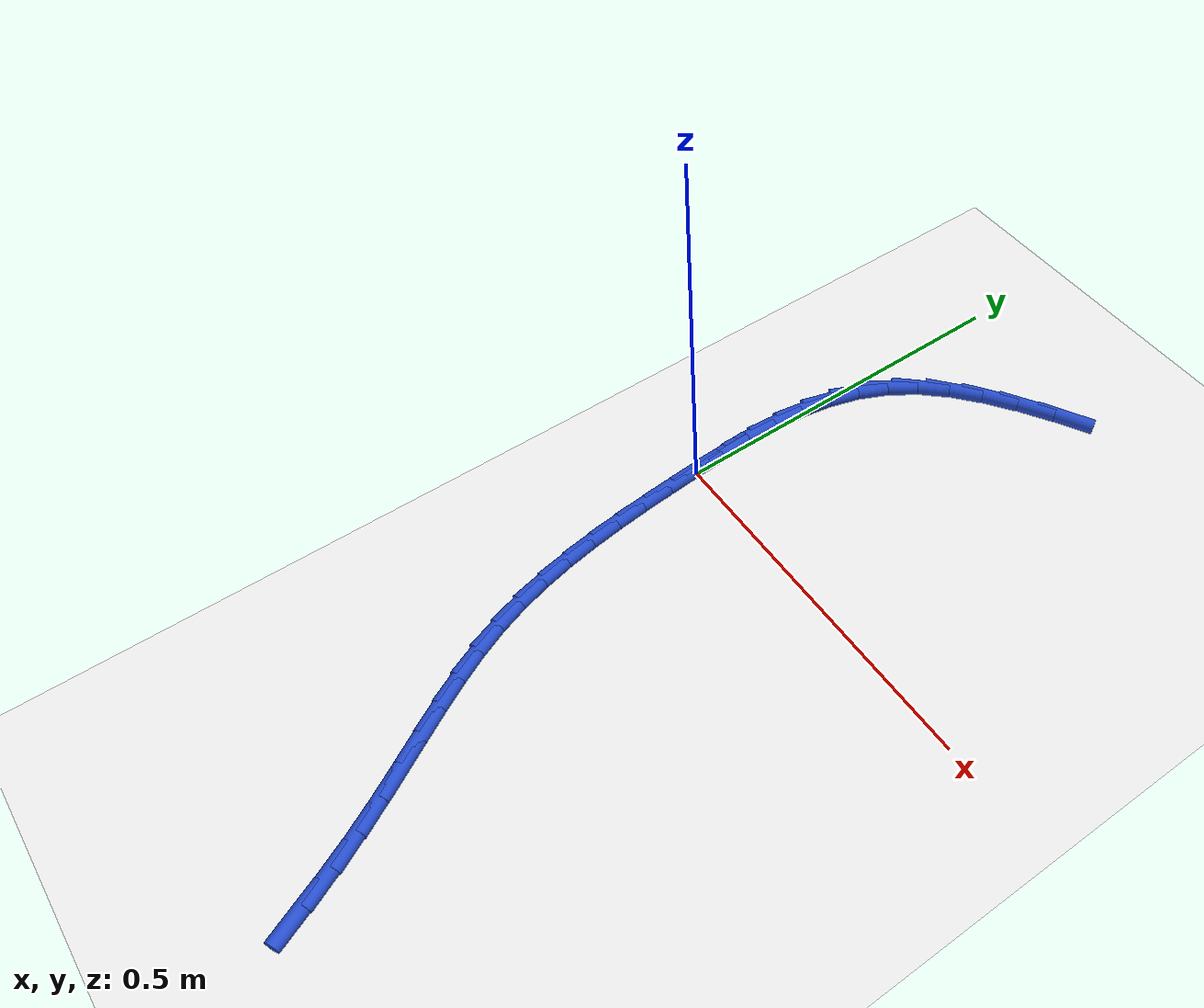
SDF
<sdf version="1.6">
 <world name="default">
  <model name="ground_plane">
   <static>1</static>
   <link name="link">
    <collision name="collision">
     <geometry><plane><normal>0 0 1</normal><size>100 100</size></plane></geometry>
     <surface><friction><ode><mu>100</mu><mu2>50</mu2></ode></friction></surface>
    </collision>
    <visual name="visual">
     <cast_shadows>0</cast_shadows>
     <geometry><plane><normal>0 0 1</normal><size>100 100</size></plane></geometry>
     <material>
      <script><uri>file://media/materials/scripts/gazebo.material</uri><name>Gazebo/WhiteGlow</name></script>
     </material>
    </visual>
   </link>
  </model>
  <model name="line">
   <link name="link_0">
    <pose>8.673617379884035e-19 3.469446951953614e-17 0.01 0 1.57 -1.5085652873056417</pose>
    <collision name="collision">
     <geometry><cylinder><radius>0.01</radius><length>0.08</length></cylinder></geometry>
    </collision>
    <visual name="visual">
     <material>
      <script><name>Gazebo/Blue</name><uri>file://media/materials/scripts/gazebo.material</uri></script>
     </material>
     <geometry><cylinder><radius>0.01</radius><length>0.08</length></cylinder></geometry>
    </visual>
   </link>
   <link name="link_1">
    <pose>-0.002795601090388354 0.044864931353532006 0.01 0 1.57 -1.5333618514169722</pose>
    <collision name="collision">
     <geometry><cylinder><radius>0.01</radius><length>0.08</length></cylinder></geometry>
    </collision>
    <visual name="visual">
     <material>
      <script><name>Gazebo/Blue</name><uri>file://media/materials/scripts/gazebo.material</uri></script>
     </material>
     <geometry><cylinder><radius>0.01</radius><length>0.08</length></cylinder></geometry>
    </visual>
   </link>
   <link name="link_2">
    <pose>-0.004472855772627155 0.08964908083377991 0.01 0 1.57 1.5618456030932293</pose>
    <collision name="collision">
     <geometry><cylinder><radius>0.01</radius><length>0.08</length></cylinder></geometry>
    </collision>
    <visual name="visual">
     <material>
      <script><name>Gazebo/Blue</name><uri>file://media/materials/scripts/gazebo.material</uri></script>
     </material>
     <geometry><cylinder><radius>0.01</radius><length>0.08</length></cylinder></geometry>
    </visual>
   </link>
   <link name="link_3">
    <pose>-0.0040761348136489775 0.13397067734941656 0.01 0 1.57 1.492151582347678</pose>
    <collision name="collision">
     <geometry><cylinder><radius>0.01</radius><length>0.08</length></cylinder></geometry>
    </collision>
    <visual name="visual">
     <material>
      <script><name>Gazebo/Blue</name><uri>file://media/materials/scripts/gazebo.material</uri></script>
     </material>
     <geometry><cylinder><radius>0.01</radius><length>0.08</length></cylinder></geometry>
    </visual>
   </link>
   <link name="link_4">
    <pose>-0.0006498089803863884 0.17744794980911469 0.01 0 1.57 1.3971464206757302</pose>
    <collision name="collision">
     <geometry><cylinder><radius>0.01</radius><length>0.08</length></cylinder></geometry>
    </collision>
    <visual name="visual">
     <material>
      <script><name>Gazebo/Blue</name><uri>file://media/materials/scripts/gazebo.material</uri></script>
     </material>
     <geometry><cylinder><radius>0.01</radius><length>0.08</length></cylinder></geometry>
    </visual>
   </link>
   <link name="link_5">
    <pose>0.00676175096022805 0.21969912712154702 0.01 0 1.57 1.2757446567778075</pose>
    <collision name="collision">
     <geometry><cylinder><radius>0.01</radius><length>0.08</length></cylinder></geometry>
    </collision>
    <visual name="visual">
     <material>
      <script><name>Gazebo/Blue</name><uri>file://media/materials/scripts/gazebo.material</uri></script>
     </material>
     <geometry><cylinder><radius>0.01</radius><length>0.08</length></cylinder></geometry>
    </visual>
   </link>
   <link name="link_6">
    <pose>0.019114174241261758 0.2603424381953864 0.01 0 1.57 1.1297058616012565</pose>
    <collision name="collision">
     <geometry><cylinder><radius>0.01</radius><length>0.08</length></cylinder></geometry>
    </collision>
    <visual name="visual">
     <material>
      <script><name>Gazebo/Blue</name><uri>file://media/materials/scripts/gazebo.material</uri></script>
     </material>
     <geometry><cylinder><radius>0.01</radius><length>0.08</length></cylinder></geometry>
    </visual>
   </link>
   <link name="link_7">
    <pose>0.03736309009578216 0.2989961119393055 0.01 0 1.57 0.9657993698622335</pose>
    <collision name="collision">
     <geometry><cylinder><radius>0.01</radius><length>0.08</length></cylinder></geometry>
    </collision>
    <visual name="visual">
     <material>
      <script><name>Gazebo/Blue</name><uri>file://media/materials/scripts/gazebo.material</uri></script>
     </material>
     <geometry><cylinder><radius>0.01</radius><length>0.08</length></cylinder></geometry>
    </visual>
   </link>
   <link name="link_8">
    <pose>0.06245431540034927 0.33528144205125376 0.01 0 1.57 0.8106305641479007</pose>
    <collision name="collision">
     <geometry><cylinder><radius>0.01</radius><length>0.08</length></cylinder></geometry>
    </collision>
    <visual name="visual">
     <material>
      <script><name>Gazebo/Blue</name><uri>file://media/materials/scripts/gazebo.material</uri></script>
     </material>
     <geometry><cylinder><radius>0.01</radius><length>0.08</length></cylinder></geometry>
    </visual>
   </link>
   <link name="link_9">
    <pose>0.0945686016024799 0.36905868259729163 0.01 0 1.57 0.6924659976164941</pose>
    <collision name="collision">
     <geometry><cylinder><radius>0.01</radius><length>0.08</length></cylinder></geometry>
    </collision>
    <visual name="visual">
     <material>
      <script><name>Gazebo/Blue</name><uri>file://media/materials/scripts/gazebo.material</uri></script>
     </material>
     <geometry><cylinder><radius>0.01</radius><length>0.08</length></cylinder></geometry>
    </visual>
   </link>
   <link name="link_10">
    <pose>0.13258652564442144 0.400594183862956 0.01 0 1.57 0.6064123715620233</pose>
    <collision name="collision">
     <geometry><cylinder><radius>0.01</radius><length>0.08</length></cylinder></geometry>
    </collision>
    <visual name="visual">
     <material>
      <script><name>Gazebo/Blue</name><uri>file://media/materials/scripts/gazebo.material</uri></script>
     </material>
     <geometry><cylinder><radius>0.01</radius><length>0.08</length></cylinder></geometry>
    </visual>
   </link>
   <link name="link_11">
    <pose>0.17526230283505712 0.4301937638986017 0.01 0 1.57 0.545457978809259</pose>
    <collision name="collision">
     <geometry><cylinder><radius>0.01</radius><length>0.08</length></cylinder></geometry>
    </collision>
    <visual name="visual">
     <material>
      <script><name>Gazebo/Blue</name><uri>file://media/materials/scripts/gazebo.material</uri></script>
     </material>
     <geometry><cylinder><radius>0.01</radius><length>0.08</length></cylinder></geometry>
    </visual>
   </link>
   <link name="link_12">
    <pose>0.22135014848326998 0.45816324075458364 0.01 0 1.57 0.5045189723497058</pose>
    <collision name="collision">
     <geometry><cylinder><radius>0.01</radius><length>0.08</length></cylinder></geometry>
    </collision>
    <visual name="visual">
     <material>
      <script><name>Gazebo/Blue</name><uri>file://media/materials/scripts/gazebo.material</uri></script>
     </material>
     <geometry><cylinder><radius>0.01</radius><length>0.08</length></cylinder></geometry>
    </visual>
   </link>
   <link name="link_173">
    <pose>0.24416886811936897 -0.6842133327515225 0.01 0 1.57 -1.1358050461990257</pose>
    <collision name="collision">
     <geometry><cylinder><radius>0.01</radius><length>0.08</length></cylinder></geometry>
    </collision>
    <visual name="visual">
     <material>
      <script><name>Gazebo/Blue</name><uri>file://media/materials/scripts/gazebo.material</uri></script>
     </material>
     <geometry><cylinder><radius>0.01</radius><length>0.08</length></cylinder></geometry>
    </visual>
   </link>
   <link name="link_174">
    <pose>0.22354233629644885 -0.6398242751541581 0.01 0 1.57 -1.1031551762928504</pose>
    <collision name="collision">
     <geometry><cylinder><radius>0.01</radius><length>0.08</length></cylinder></geometry>
    </collision>
    <visual name="visual">
     <material>
      <script><name>Gazebo/Blue</name><uri>file://media/materials/scripts/gazebo.material</uri></script>
     </material>
     <geometry><cylinder><radius>0.01</radius><length>0.08</length></cylinder></geometry>
    </visual>
   </link>
   <link name="link_175">
    <pose>0.20215766890898676 -0.5974785619144083 0.01 0 1.57 -1.0669016974581802</pose>
    <collision name="collision">
     <geometry><cylinder><radius>0.01</radius><length>0.08</length></cylinder></geometry>
    </collision>
    <visual name="visual">
     <material>
      <script><name>Gazebo/Blue</name><uri>file://media/materials/scripts/gazebo.material</uri></script>
     </material>
     <geometry><cylinder><radius>0.01</radius><length>0.08</length></cylinder></geometry>
    </visual>
   </link>
   <link name="link_176">
    <pose>0.1800409750053152 -0.5573663264668896 0.01 0 1.57 -1.0422637249716855</pose>
    <collision name="collision">
     <geometry><cylinder><radius>0.01</radius><length>0.08</length></cylinder></geometry>
    </collision>
    <visual name="visual">
     <material>
      <script><name>Gazebo/Blue</name><uri>file://media/materials/scripts/gazebo.material</uri></script>
     </material>
     <geometry><cylinder><radius>0.01</radius><length>0.08</length></cylinder></geometry>
    </visual>
   </link>
   <link name="link_177">
    <pose>0.15765017456520433 -0.5190224710524154 0.01 0 1.57 -1.0318071379736968</pose>
    <collision name="collision">
     <geometry><cylinder><radius>0.01</radius><length>0.08</length></cylinder></geometry>
    </collision>
    <visual name="visual">
     <material>
      <script><name>Gazebo/Blue</name><uri>file://media/materials/scripts/gazebo.material</uri></script>
     </material>
     <geometry><cylinder><radius>0.01</radius><length>0.08</length></cylinder></geometry>
    </visual>
   </link>
   <link name="link_178">
    <pose>0.13547182913452108 -0.4819384371140763 0.01 0 1.57 -1.036884888618876</pose>
    <collision name="collision">
     <geometry><cylinder><radius>0.01</radius><length>0.08</length></cylinder></geometry>
    </collision>
    <visual name="visual">
     <material>
      <script><name>Gazebo/Blue</name><uri>file://media/materials/scripts/gazebo.material</uri></script>
     </material>
     <geometry><cylinder><radius>0.01</radius><length>0.08</length></cylinder></geometry>
    </visual>
   </link>
   <link name="link_179">
    <pose>0.113992500259133 -0.44560566609496305 0.01 0 1.57 -1.058552360144032</pose>
    <collision name="collision">
     <geometry><cylinder><radius>0.01</radius><length>0.08</length></cylinder></geometry>
    </collision>
    <visual name="visual">
     <material>
      <script><name>Gazebo/Blue</name><uri>file://media/materials/scripts/gazebo.material</uri></script>
     </material>
     <geometry><cylinder><radius>0.01</radius><length>0.08</length></cylinder></geometry>
    </visual>
   </link>
   <link name="link_180">
    <pose>0.09369874948490617 -0.409515599438164 0.01 0 1.57 -1.0974340572571135</pose>
    <collision name="collision">
     <geometry><cylinder><radius>0.01</radius><length>0.08</length></cylinder></geometry>
    </collision>
    <visual name="visual">
     <material>
      <script><name>Gazebo/Blue</name><uri>file://media/materials/scripts/gazebo.material</uri></script>
     </material>
     <geometry><cylinder><radius>0.01</radius><length>0.08</length></cylinder></geometry>
    </visual>
   </link>
   <link name="link_181">
    <pose>0.07507713835770809 -0.37315967858677046 0.01 0 1.57 -1.1534598047958275</pose>
    <collision name="collision">
     <geometry><cylinder><radius>0.01</radius><length>0.08</length></cylinder></geometry>
    </collision>
    <visual name="visual">
     <material>
      <script><name>Gazebo/Blue</name><uri>file://media/materials/scripts/gazebo.material</uri></script>
     </material>
     <geometry><cylinder><radius>0.01</radius><length>0.08</length></cylinder></geometry>
    </visual>
   </link>
   <link name="link_182">
    <pose>0.058614228423405815 -0.3360293449838723 0.01 0 1.57 -1.2240894899751178</pose>
    <collision name="collision">
     <geometry><cylinder><radius>0.01</radius><length>0.08</length></cylinder></geometry>
    </collision>
    <visual name="visual">
     <material>
      <script><name>Gazebo/Blue</name><uri>file://media/materials/scripts/gazebo.material</uri></script>
     </material>
     <geometry><cylinder><radius>0.01</radius><length>0.08</length></cylinder></geometry>
    </visual>
   </link>
   <link name="link_183">
    <pose>0.044749063914179085 -0.29765368437294704 0.01 0 1.57 -1.2931223789009674</pose>
    <collision name="collision">
     <geometry><cylinder><radius>0.01</radius><length>0.08</length></cylinder></geometry>
    </collision>
    <visual name="visual">
     <material>
      <script><name>Gazebo/Blue</name><uri>file://media/materials/scripts/gazebo.material</uri></script>
     </material>
     <geometry><cylinder><radius>0.01</radius><length>0.08</length></cylinder></geometry>
    </visual>
   </link>
   <link name="link_184">
    <pose>0.03343176850799913 -0.25794911651911323 0.01 0 1.57 -1.351649085451041</pose>
    <collision name="collision">
     <geometry><cylinder><radius>0.01</radius><length>0.08</length></cylinder></geometry>
    </collision>
    <visual name="visual">
     <material>
      <script><name>Gazebo/Blue</name><uri>file://media/materials/scripts/gazebo.material</uri></script>
     </material>
     <geometry><cylinder><radius>0.01</radius><length>0.08</length></cylinder></geometry>
    </visual>
   </link>
   <link name="link_185">
    <pose>0.024324768952880806 -0.2170599812614865 0.01 0 1.57 -1.3998463969658177</pose>
    <collision name="collision">
     <geometry><cylinder><radius>0.01</radius><length>0.08</length></cylinder></geometry>
    </collision>
    <visual name="visual">
     <material>
      <script><name>Gazebo/Blue</name><uri>file://media/materials/scripts/gazebo.material</uri></script>
     </material>
     <geometry><cylinder><radius>0.01</radius><length>0.08</length></cylinder></geometry>
    </visual>
   </link>
   <link name="link_186">
    <pose>0.017086802136161004 -0.175133541631026 0.01 0 1.57 -1.4382142041495247</pose>
    <collision name="collision">
     <geometry><cylinder><radius>0.01</radius><length>0.08</length></cylinder></geometry>
    </collision>
    <visual name="visual">
     <material>
      <script><name>Gazebo/Blue</name><uri>file://media/materials/scripts/gazebo.material</uri></script>
     </material>
     <geometry><cylinder><radius>0.01</radius><length>0.08</length></cylinder></geometry>
    </visual>
   </link>
   <link name="link_187">
    <pose>0.01137660494517618 -0.13231706065868834 0.01 0 1.57 -1.4673158649402192</pose>
    <collision name="collision">
     <geometry><cylinder><radius>0.01</radius><length>0.08</length></cylinder></geometry>
    </collision>
    <visual name="visual">
     <material>
      <script><name>Gazebo/Blue</name><uri>file://media/materials/scripts/gazebo.material</uri></script>
     </material>
     <geometry><cylinder><radius>0.01</radius><length>0.08</length></cylinder></geometry>
    </visual>
   </link>
   <link name="link_188">
    <pose>0.006852914267263239 -0.08875780137543254 0.01 0 1.57 -1.4876802239317573</pose>
    <collision name="collision">
     <geometry><cylinder><radius>0.01</radius><length>0.08</length></cylinder></geometry>
    </collision>
    <visual name="visual">
     <material>
      <script><name>Gazebo/Blue</name><uri>file://media/materials/scripts/gazebo.material</uri></script>
     </material>
     <geometry><cylinder><radius>0.01</radius><length>0.08</length></cylinder></geometry>
    </visual>
   </link>
   <link name="link_189">
    <pose>0.0031744669897589345 -0.044603026812217034 0.01 0 1.57 -1.4997445736815402</pose>
    <collision name="collision">
     <geometry><cylinder><radius>0.01</radius><length>0.08</length></cylinder></geometry>
    </collision>
    <visual name="visual">
     <material>
      <script><name>Gazebo/Blue</name><uri>file://media/materials/scripts/gazebo.material</uri></script>
     </material>
     <geometry><cylinder><radius>0.01</radius><length>0.08</length></cylinder></geometry>
    </visual>
   </link>
   <link name="link_190">
    <pose>3.469446951953614e-18 -1.3877787807814457e-17 0.01 0 1.57 -1.5038257946397782</pose>
    <collision name="collision">
     <geometry><cylinder><radius>0.01</radius><length>0.08</length></cylinder></geometry>
    </collision>
    <visual name="visual">
     <material>
      <script><name>Gazebo/Blue</name><uri>file://media/materials/scripts/gazebo.material</uri></script>
     </material>
     <geometry><cylinder><radius>0.01</radius><length>0.08</length></cylinder></geometry>
    </visual>
   </link>
   <link name="link_191">
    <pose>-0.003011749814676807 0.044904016030260244 0.01 0 1.57 -1.5038257946397782</pose>
    <collision name="collision">
     <geometry><cylinder><radius>0.01</radius><length>0.08</length></cylinder></geometry>
    </collision>
    <visual name="visual">
     <material>
      <script><name>Gazebo/Blue</name><uri>file://media/materials/scripts/gazebo.material</uri></script>
     </material>
     <geometry><cylinder><radius>0.01</radius><length>0.08</length></cylinder></geometry>
    </visual>
   </link>
  </model>
 </world>
</sdf>
